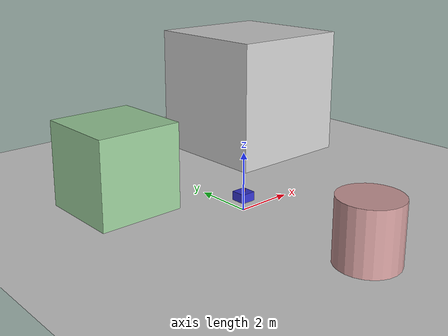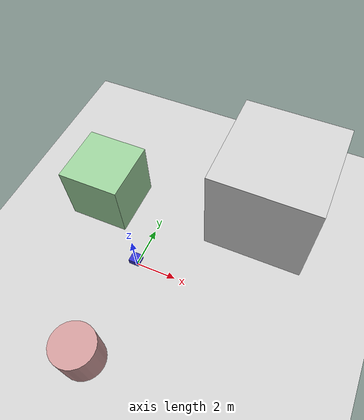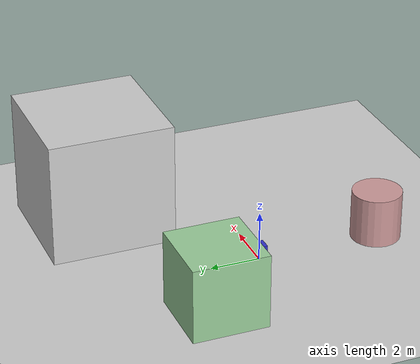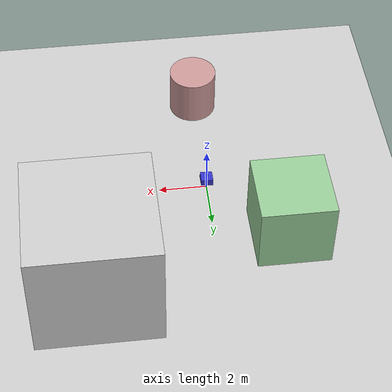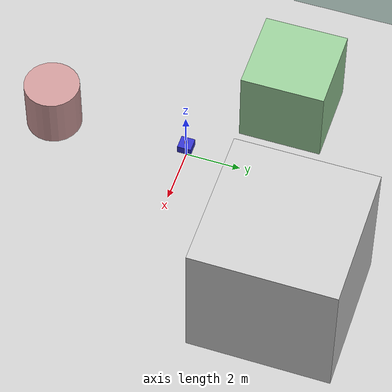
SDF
<?xml version="1.0" ?>
<sdf version="1.6">
  <world name="lidar_test_world">

    <!-- Global light source -->
    <include>
      <uri>model://sun</uri>
    </include>

    <!-- Ground plane -->
    <include>
      <uri>model://ground_plane</uri>
    </include>

    <!-- Simple building for testing -->
    <model name="building_1">
      <pose>5 5 2.5 0 0 0</pose>
      <static>true</static>
      <link name="link">
        <collision name="collision">
          <geometry>
            <box>
              <size>5 5 5</size>
            </box>
          </geometry>
        </collision>
        <visual name="visual">
          <geometry>
            <box>
              <size>5 5 5</size>
            </box>
          </geometry>
          <material>
            <ambient>0.8 0.8 0.8 1</ambient>
            <diffuse>0.8 0.8 0.8 1</diffuse>
          </material>
        </visual>
      </link>
    </model>

    <!-- Another building -->
    <model name="building_2">
      <pose>-3 3 1.5 0 0 0</pose>
      <static>true</static>
      <link name="link">
        <collision name="collision">
          <geometry>
            <box>
              <size>3 3 3</size>
            </box>
          </geometry>
        </collision>
        <visual name="visual">
          <geometry>
            <box>
              <size>3 3 3</size>
            </box>
          </geometry>
          <material>
            <ambient>0.6 0.8 0.6 1</ambient>
            <diffuse>0.6 0.8 0.6 1</diffuse>
          </material>
        </visual>
      </link>
    </model>

    <!-- Cylindrical obstacle -->
    <model name="cylinder_obstacle">
      <pose>0 -5 1 0 0 0</pose>
      <static>true</static>
      <link name="link">
        <collision name="collision">
          <geometry>
            <cylinder>
              <radius>1</radius>
              <length>2</length>
            </cylinder>
          </geometry>
        </collision>
        <visual name="visual">
          <geometry>
            <cylinder>
              <radius>1</radius>
              <length>2</length>
            </cylinder>
          </geometry>
          <material>
            <ambient>0.8 0.6 0.6 1</ambient>
            <diffuse>0.8 0.6 0.6 1</diffuse>
          </material>
        </visual>
      </link>
    </model>

    <!-- Robot with 3D LiDAR -->
    <model name="lidar_robot">
      <pose>0 0 0.5 0 0 0</pose>
      <static>false</static>

      <!-- Base link -->
      <link name="base_link">
        <collision name="collision">
          <geometry>
            <box>
              <size>0.5 0.5 0.3</size>
            </box>
          </geometry>
        </collision>
        <visual name="visual">
          <geometry>
            <box>
              <size>0.5 0.5 0.3</size>
            </box>
          </geometry>
          <material>
            <ambient>0.2 0.2 0.8 1</ambient>
            <diffuse>0.2 0.2 0.8 1</diffuse>
          </material>
        </visual>
        <inertial>
          <mass>10</mass>
          <inertia>
            <ixx>0.1</ixx>
            <iyy>0.1</iyy>
            <izz>0.1</izz>
          </inertia>
        </inertial>
      </link>

      <!-- LiDAR sensor -->
      <link name="lidar_link">
        <pose>0 0 0.2 0 0 0</pose>
        <collision name="collision">
          <geometry>
            <cylinder>
              <radius>0.05</radius>
              <length>0.1</length>
            </cylinder>
          </geometry>
        </collision>
        <visual name="visual">
          <geometry>
            <cylinder>
              <radius>0.05</radius>
              <length>0.1</length>
            </cylinder>
          </geometry>
          <material>
            <ambient>0.8 0.2 0.2 1</ambient>
            <diffuse>0.8 0.2 0.2 1</diffuse>
          </material>
        </visual>
        <inertial>
          <mass>0.1</mass>
          <inertia>
            <ixx>0.001</ixx>
            <iyy>0.001</iyy>
            <izz>0.001</izz>
          </inertia>
        </inertial>
        <sensor name="lidar_sensor" type="gpu_ray">
          <pose>0 0 0 0 0 0</pose>
          <visualize>true</visualize>
          <update_rate>10</update_rate>
          <ray>
            <scan>
              <horizontal>
                <samples>720</samples>
                <resolution>1</resolution>
                <min_angle>-3.14159</min_angle>
                <max_angle>3.14159</max_angle>
              </horizontal>
              <vertical>
                <samples>64</samples>
                <resolution>1</resolution>
                <min_angle>-0.4</min_angle>
                <max_angle>0.4</max_angle>
              </vertical>
            </scan>
            <range>
              <min>0.1</min>
              <max>30.0</max>
              <resolution>0.01</resolution>
            </range>
          </ray>
          <plugin name="gazebo_ros_ray_sensor" filename="libgazebo_ros_ray_sensor.so">
            <ros>
              <remapping>~/out:=/scan</remapping>
            </ros>
            <output_type>sensor_msgs/PointCloud2</output_type>
            <frame_name>lidar_link</frame_name>
          </plugin>
        </sensor>
      </link>

      <!-- Joint between base and lidar -->
      <joint name="lidar_joint" type="fixed">
        <parent>base_link</parent>
        <child>lidar_link</child>
        <pose>0 0 0.2 0 0 0</pose>
      </joint>
    </model>

    <!-- Physics settings -->
    <physics name="default_physics" default="0" type="ode">
      <gravity>0 0 -9.8066</gravity>
      <ode>
        <solver>
          <type>quick</type>
          <iters>10</iters>
          <sor>1.3</sor>
          <use_dynamic_moi_rescaling>0</use_dynamic_moi_rescaling>
        </solver>
        <constraints>
          <cfm>0.00001</cfm>
          <erp>0.2</erp>
          <contact_max_correcting_vel>100.0</contact_max_correcting_vel>
          <contact_surface_layer>0.001</contact_surface_layer>
        </constraints>
      </ode>
      <max_step_size>0.004</max_step_size>
      <real_time_factor>1</real_time_factor>
      <real_time_update_rate>250</real_time_update_rate>
    </physics>

  </world>
</sdf>
